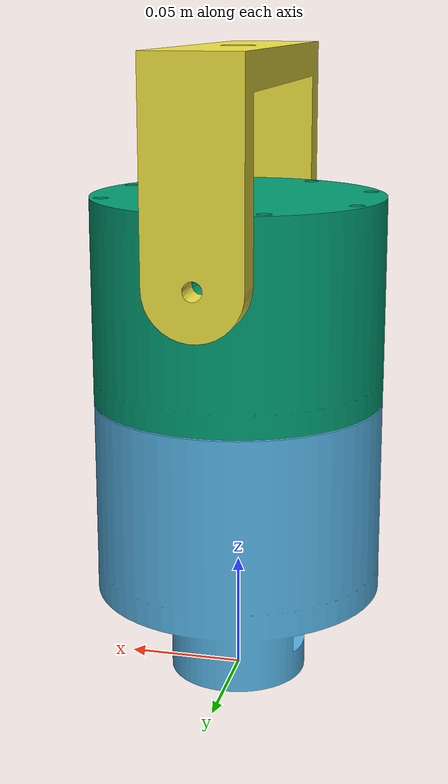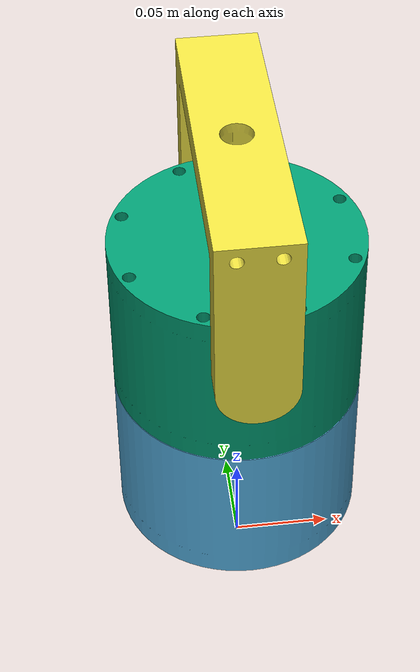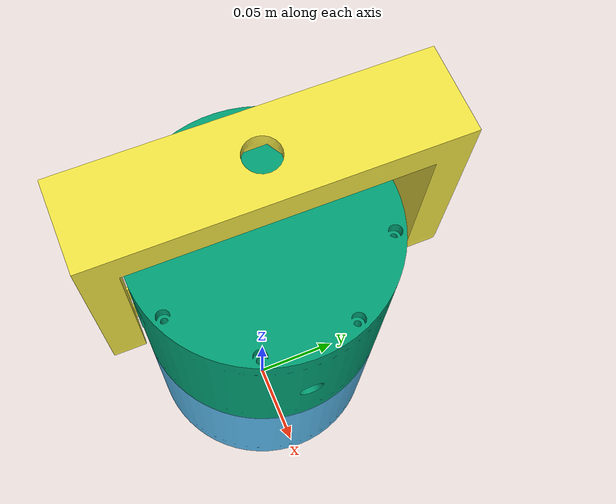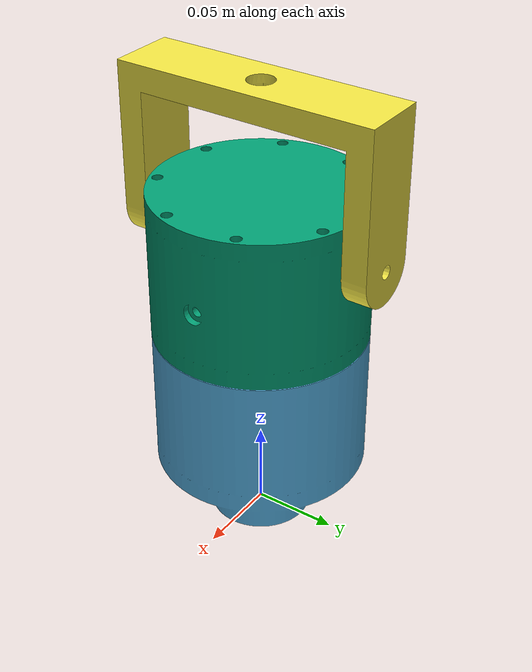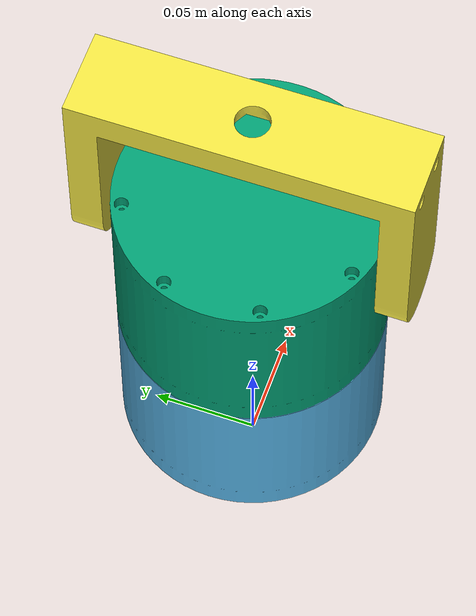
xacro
<?xml version="1.0"?>
<robot name="bathset" xmlns:xacro="http://www.ros.org/wiki/xacro">

  <xacro:include filename="$(find xm540_bringup)/urdf/xm540_manipulator.urdf" />
  <xacro:include filename="$(find bathset_description)/urdf/xm540.ros2_control.xacro" />
  <xacro:include filename="$(find bathset_description)/urdf/laser.xacro" />

</robot>

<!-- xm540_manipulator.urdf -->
<robot name="xm540_manipulator">

  <!-- Wirtualna baza (wymagana przez robot_state_publisher) -->
  <link name="base_link"/>

  <!-- Człon 0 – baza, nieruchomy -->
  <link name="link_0">
    <visual>
      <origin xyz="0 0 0" rpy="3.14159 0 0"/>
      <geometry>
        <mesh filename="package://xm540_bringup/meshes/link_0.stl" scale="0.001 0.001 0.001"/>
      </geometry>
    </visual>
    <collision>
      <origin xyz="0 0 0" rpy="3.14159 0 0"/>
      <geometry>
        <mesh filename="package://xm540_bringup/meshes/link_0.stl" scale="0.001 0.001 0.001"/>
      </geometry>
    </collision>
  </link>

  <joint name="base_to_link0" type="fixed">
    <parent link="base_link"/>
    <child link="link_0"/>
    <origin xyz="0 0 0" rpy="0 0 0"/>
  </joint>

  <!-- Człon 1 – nieruchomy, przesunięty względem link_0 -->
  <link name="link_1">
    <visual>
      <geometry>
        <mesh filename="package://xm540_bringup/meshes/link_1.stl" scale="0.001 0.001 0.001"/>
      </geometry>
    </visual>
    <collision>
      <geometry>
        <mesh filename="package://xm540_bringup/meshes/link_1.stl" scale="0.001 0.001 0.001"/>
      </geometry>
    </collision>
  </link>

  <joint name="xm540_joint_z" type="revolute">
    <parent link="link_0"/>
    <child link="link_1"/>
    <origin xyz="0 0 0.1255" rpy="0 0 0"/>
    <axis xyz="0 0 1"/>
    <limit lower="-1.5708" upper="1.5708" effort="10.6" velocity="2.69"/>
  </joint>

  <!-- Człon 2 – obracany przez serwo XM540 wokół osi Y -->
  <link name="link_2">
    <visual>
      <geometry>
        <mesh filename="package://xm540_bringup/meshes/link_2.stl" scale="0.001 0.001 0.001"/>
      </geometry>
    </visual>
    <collision>
      <geometry>
        <mesh filename="package://xm540_bringup/meshes/link_2.stl" scale="0.001 0.001 0.001"/>
      </geometry>
    </collision>
  </link>

  <joint name="xm540_joint" type="revolute">
    <parent link="link_1"/>
    <child link="link_2"/>
    <origin xyz="0 0.0635 0.062" rpy="0 1.5708 0"/>
    <axis xyz="0 1 0"/>
    <limit lower="-1.5708" upper="1.5708" effort="10.6" velocity="2.69"/>
  </joint>

</robot>
